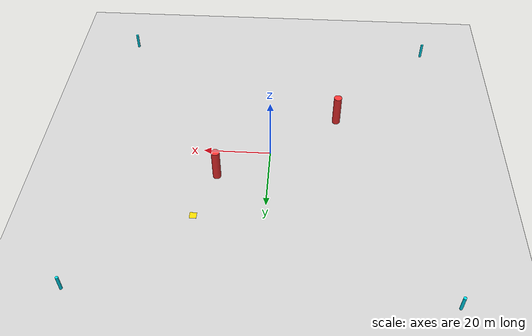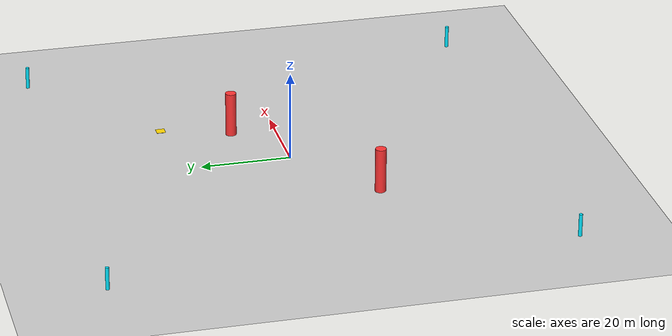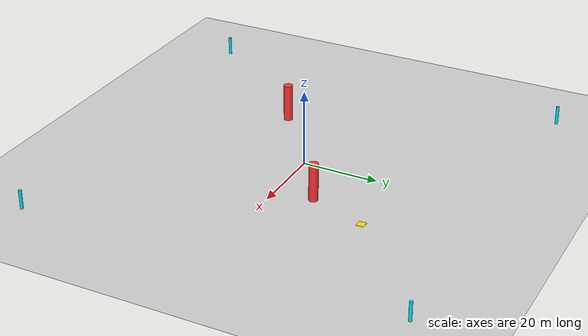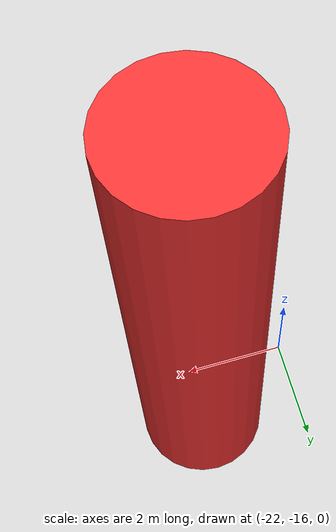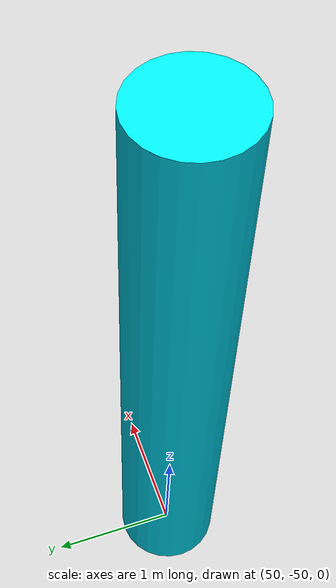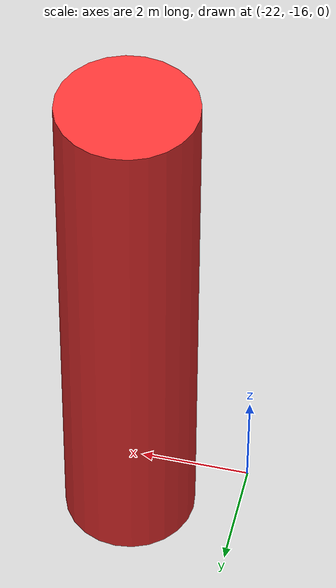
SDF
<?xml version="1.0" ?>
<sdf version="1.6">
  <world name="teknofest_arena">
    <!-- Scene lighting -->
    <include>
      <uri>model://sun</uri>
    </include>

    <!-- Competition Ground Plane -->
    <include>
      <uri>model://ground_plane</uri>
    </include>

    <physics name="default_physics" default="0" type="ode">
      <gravity>0 0 -9.8066</gravity>
      <ode>
        <solver>
          <type>quick</type>
          <iters>15</iters>
          <sor>1.3</sor>
        </solver>
      </ode>
      <max_step_size>0.002</max_step_size>
      <real_time_update_rate>500</real_time_update_rate>
    </physics>

    <!-- Corner Pylon 1 (North-East) -->
    <model name="pylon_ne">
      <static>true</static>
      <pose>50 50 2.5 0 0 0</pose>
      <link name="link">
        <visual name="visual">
          <geometry>
            <cylinder><radius>0.4</radius><length>5.0</length></cylinder>
          </geometry>
          <material>
            <ambient>0 0.9 1 1</ambient>
            <diffuse>0 0.9 1 1</diffuse>
          </material>
        </visual>
      </link>
    </model>

    <!-- Corner Pylon 2 (North-West) -->
    <model name="pylon_nw">
      <static>true</static>
      <pose>-50 50 2.5 0 0 0</pose>
      <link name="link">
        <visual name="visual">
          <geometry>
            <cylinder><radius>0.4</radius><length>5.0</length></cylinder>
          </geometry>
          <material>
            <ambient>0 0.9 1 1</ambient>
            <diffuse>0 0.9 1 1</diffuse>
          </material>
        </visual>
      </link>
    </model>

    <!-- Corner Pylon 3 (South-West) -->
    <model name="pylon_sw">
      <static>true</static>
      <pose>-50 -50 2.5 0 0 0</pose>
      <link name="link">
        <visual name="visual">
          <geometry>
            <cylinder><radius>0.4</radius><length>5.0</length></cylinder>
          </geometry>
          <material>
            <ambient>0 0.9 1 1</ambient>
            <diffuse>0 0.9 1 1</diffuse>
          </material>
        </visual>
      </link>
    </model>

    <!-- Corner Pylon 4 (South-East) -->
    <model name="pylon_se">
      <static>true</static>
      <pose>50 -50 2.5 0 0 0</pose>
      <link name="link">
        <visual name="visual">
          <geometry>
            <cylinder><radius>0.4</radius><length>5.0</length></cylinder>
          </geometry>
          <material>
            <ambient>0 0.9 1 1</ambient>
            <diffuse>0 0.9 1 1</diffuse>
          </material>
        </visual>
      </link>
    </model>

    <!-- Obstacle Tower Alpha -->
    <model name="obstacle_tower_alpha">
      <static>true</static>
      <pose>15 10 5.0 0 0 0</pose>
      <link name="link">
        <collision name="collision">
          <geometry>
            <cylinder><radius>1.2</radius><length>10.0</length></cylinder>
          </geometry>
        </collision>
        <visual name="visual">
          <geometry>
            <cylinder><radius>1.2</radius><length>10.0</length></cylinder>
          </geometry>
          <material>
            <ambient>1 0.2 0.2 1</ambient>
            <diffuse>1 0.2 0.2 1</diffuse>
          </material>
        </visual>
      </link>
    </model>

    <!-- Obstacle Tower Beta -->
    <model name="obstacle_tower_beta">
      <static>true</static>
      <pose>-20 -15 5.0 0 0 0</pose>
      <link name="link">
        <collision name="collision">
          <geometry>
            <cylinder><radius>1.2</radius><length>10.0</length></cylinder>
          </geometry>
        </collision>
        <visual name="visual">
          <geometry>
            <cylinder><radius>1.2</radius><length>10.0</length></cylinder>
          </geometry>
          <material>
            <ambient>1 0.2 0.2 1</ambient>
            <diffuse>1 0.2 0.2 1</diffuse>
          </material>
        </visual>
      </link>
    </model>

    <!-- Competition Ground Target QR-Alpha -->
    <model name="ground_target_qr_alpha">
      <static>true</static>
      <pose>20 25 0.05 0 0 0</pose>
      <link name="link">
        <visual name="visual">
          <geometry>
            <box><size>2.0 2.0 0.05</size></box>
          </geometry>
          <material>
            <ambient>1 0.84 0 1</ambient>
            <diffuse>1 0.84 0 1</diffuse>
          </material>
        </visual>
      </link>
    </model>
  </world>
</sdf>
